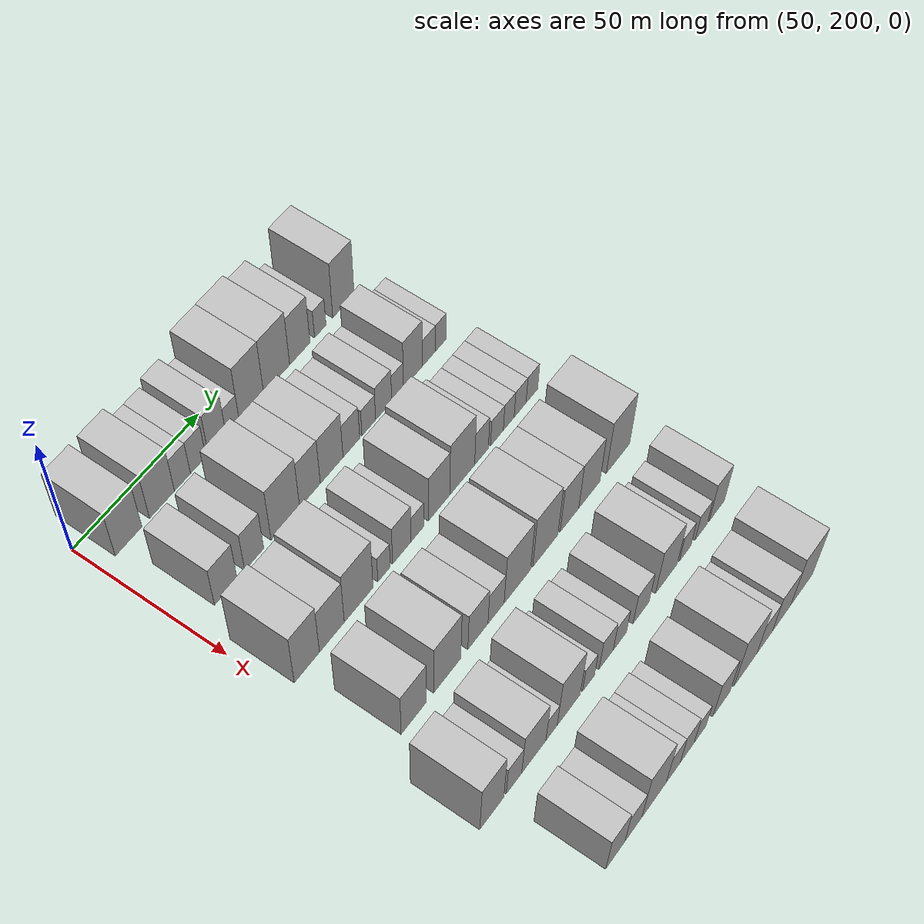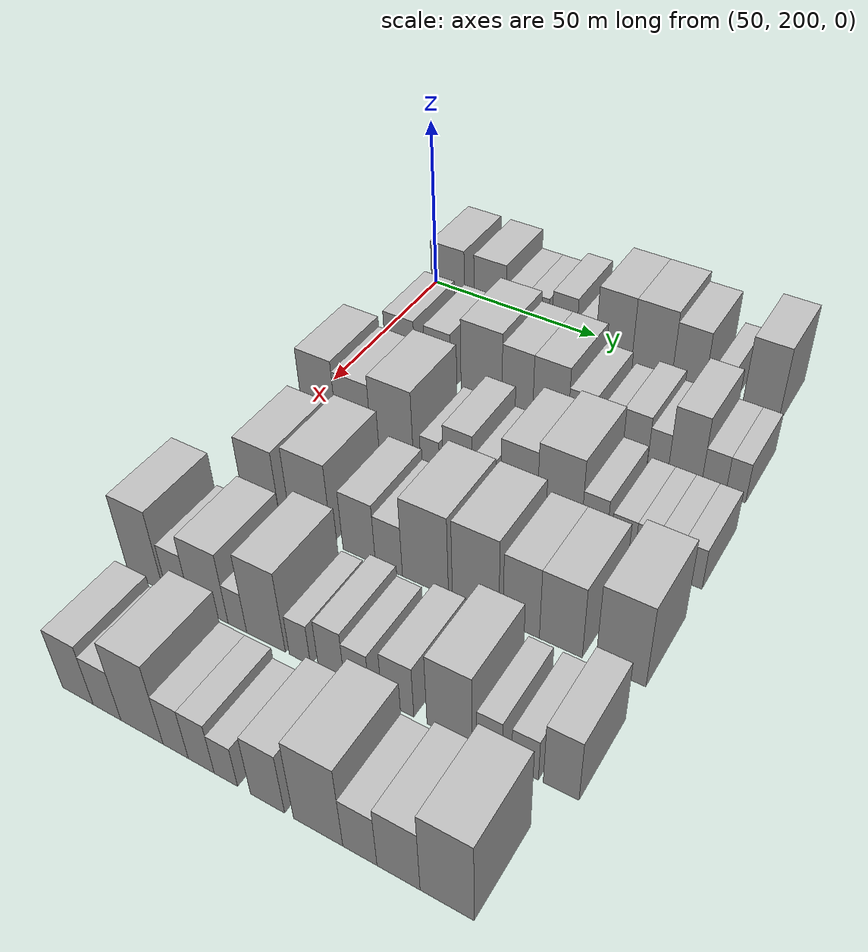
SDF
<sdf version="1.6">
 <world name="default">
  <model name="building_82">
   <static>1</static>
   <pose>50.0000 210.0472 0 0.000000 0.000000 0.000000</pose>
   <link name="link">
    <pose>0 0 10.50 0 0 0</pose>
    <collision name="collision"><geometry><box><size>20.0000 10.3637 21.0000</size></box></geometry></collision>
    <visual name="visual">
     <cast_shadows>0</cast_shadows>
     <geometry><box><size>20.0000 10.3637 21.0000</size></box></geometry>
     <material>
      <script>
       <uri>model://HANNAS_wall/materials/scripts</uri>
       <uri>model://HANNAS_wall/materials/textures</uri>
       <name>vrc/HANNAS_wall</name>
      </script>
     </material>
    </visual>
   </link>
  </model>
  <model name="building_83">
   <static>1</static>
   <pose>50.0000 223.1974 0 0.000000 0.000000 0.000000</pose>
   <link name="link">
    <pose>0 0 10.50 0 0 0</pose>
    <collision name="collision"><geometry><box><size>20.0000 9.9367 21.0000</size></box></geometry></collision>
    <visual name="visual">
     <cast_shadows>0</cast_shadows>
     <geometry><box><size>20.0000 9.9367 21.0000</size></box></geometry>
     <material>
      <script>
       <uri>model://HANNAS_wall/materials/scripts</uri>
       <uri>model://HANNAS_wall/materials/textures</uri>
       <name>vrc/HANNAS_wall</name>
      </script>
     </material>
    </visual>
   </link>
  </model>
  <model name="building_84">
   <static>1</static>
   <pose>50.0000 231.3845 0 0.000000 0.000000 0.000000</pose>
   <link name="link">
    <pose>0 0 7.50 0 0 0</pose>
    <collision name="collision"><geometry><box><size>20.0000 6.4375 15.0000</size></box></geometry></collision>
    <visual name="visual">
     <cast_shadows>0</cast_shadows>
     <geometry><box><size>20.0000 6.4375 15.0000</size></box></geometry>
     <material>
      <script>
       <uri>model://HANNAS_wall/materials/scripts</uri>
       <uri>model://HANNAS_wall/materials/textures</uri>
       <name>vrc/HANNAS_wall</name>
      </script>
     </material>
    </visual>
   </link>
  </model>
  <model name="building_85">
   <static>1</static>
   <pose>50.0000 237.7396 0 0.000000 0.000000 0.000000</pose>
   <link name="link">
    <pose>0 0 7.50 0 0 0</pose>
    <collision name="collision"><geometry><box><size>20.0000 6.2727 15.0000</size></box></geometry></collision>
    <visual name="visual">
     <cast_shadows>0</cast_shadows>
     <geometry><box><size>20.0000 6.2727 15.0000</size></box></geometry>
     <material>
      <script>
       <uri>model://HANNAS_wall/materials/scripts</uri>
       <uri>model://HANNAS_wall/materials/textures</uri>
       <name>vrc/HANNAS_wall</name>
      </script>
     </material>
    </visual>
   </link>
  </model>
  <model name="building_86">
   <static>1</static>
   <pose>50.0000 245.5218 0 0.000000 0.000000 0.000000</pose>
   <link name="link">
    <pose>0 0 9.00 0 0 0</pose>
    <collision name="collision"><geometry><box><size>20.0000 7.2917 18.0000</size></box></geometry></collision>
    <visual name="visual">
     <cast_shadows>0</cast_shadows>
     <geometry><box><size>20.0000 7.2917 18.0000</size></box></geometry>
     <material>
      <script>
       <uri>model://HANNAS_wall/materials/scripts</uri>
       <uri>model://HANNAS_wall/materials/textures</uri>
       <name>vrc/HANNAS_wall</name>
      </script>
     </material>
    </visual>
   </link>
  </model>
  <model name="building_87">
   <static>1</static>
   <pose>50.0000 251.9263 0 0.000000 0.000000 0.000000</pose>
   <link name="link">
    <pose>0 0 6.00 0 0 0</pose>
    <collision name="collision"><geometry><box><size>20.0000 5.5173 12.0000</size></box></geometry></collision>
    <visual name="visual">
     <cast_shadows>0</cast_shadows>
     <geometry><box><size>20.0000 5.5173 12.0000</size></box></geometry>
     <material>
      <script>
       <uri>model://HANNAS_wall/materials/scripts</uri>
       <uri>model://HANNAS_wall/materials/textures</uri>
       <name>vrc/HANNAS_wall</name>
      </script>
     </material>
    </visual>
   </link>
  </model>
  <model name="building_88">
   <static>1</static>
   <pose>50.0000 259.8517 0 0.000000 0.000000 0.000000</pose>
   <link name="link">
    <pose>0 0 12.00 0 0 0</pose>
    <collision name="collision"><geometry><box><size>20.0000 10.3336 24.0000</size></box></geometry></collision>
    <visual name="visual">
     <cast_shadows>0</cast_shadows>
     <geometry><box><size>20.0000 10.3336 24.0000</size></box></geometry>
     <material>
      <script>
       <uri>model://HANNAS_wall/materials/scripts</uri>
       <uri>model://HANNAS_wall/materials/textures</uri>
       <name>vrc/HANNAS_wall</name>
      </script>
     </material>
    </visual>
   </link>
  </model>
  <model name="building_89">
   <static>1</static>
   <pose>50.0000 270.6200 0 0.000000 0.000000 0.000000</pose>
   <link name="link">
    <pose>0 0 12.00 0 0 0</pose>
    <collision name="collision"><geometry><box><size>20.0000 11.2029 24.0000</size></box></geometry></collision>
    <visual name="visual">
     <cast_shadows>0</cast_shadows>
     <geometry><box><size>20.0000 11.2029 24.0000</size></box></geometry>
     <material>
      <script>
       <uri>model://HANNAS_wall/materials/scripts</uri>
       <uri>model://HANNAS_wall/materials/textures</uri>
       <name>vrc/HANNAS_wall</name>
      </script>
     </material>
    </visual>
   </link>
  </model>
  <model name="building_90">
   <static>1</static>
   <pose>50.0000 280.6599 0 0.000000 0.000000 0.000000</pose>
   <link name="link">
    <pose>0 0 10.50 0 0 0</pose>
    <collision name="collision"><geometry><box><size>20.0000 8.8768 21.0000</size></box></geometry></collision>
    <visual name="visual">
     <cast_shadows>0</cast_shadows>
     <geometry><box><size>20.0000 8.8768 21.0000</size></box></geometry>
     <material>
      <script>
       <uri>model://HANNAS_wall/materials/scripts</uri>
       <uri>model://HANNAS_wall/materials/textures</uri>
       <name>vrc/HANNAS_wall</name>
      </script>
     </material>
    </visual>
   </link>
  </model>
  <model name="building_91">
   <static>1</static>
   <pose>50.0000 289.6364 0 0.000000 0.000000 0.000000</pose>
   <link name="link">
    <pose>0 0 6.00 0 0 0</pose>
    <collision name="collision"><geometry><box><size>20.0000 5.0762 12.0000</size></box></geometry></collision>
    <visual name="visual">
     <cast_shadows>0</cast_shadows>
     <geometry><box><size>20.0000 5.0762 12.0000</size></box></geometry>
     <material>
      <script>
       <uri>model://HANNAS_wall/materials/scripts</uri>
       <uri>model://HANNAS_wall/materials/textures</uri>
       <name>vrc/HANNAS_wall</name>
      </script>
     </material>
    </visual>
   </link>
  </model>
  <model name="building_92">
   <static>1</static>
   <pose>50.0000 299.9758 0 0.000000 0.000000 0.000000</pose>
   <link name="link">
    <pose>0 0 12.00 0 0 0</pose>
    <collision name="collision"><geometry><box><size>20.0000 9.6026 24.0000</size></box></geometry></collision>
    <visual name="visual">
     <cast_shadows>0</cast_shadows>
     <geometry><box><size>20.0000 9.6026 24.0000</size></box></geometry>
     <material>
      <script>
       <uri>model://HANNAS_wall/materials/scripts</uri>
       <uri>model://HANNAS_wall/materials/textures</uri>
       <name>vrc/HANNAS_wall</name>
      </script>
     </material>
    </visual>
   </link>
  </model>
  <model name="building_194">
   <static>1</static>
   <pose>79.0000 213.2401 0 0.000000 0.000000 0.000000</pose>
   <link name="link">
    <pose>0 0 9.00 0 0 0</pose>
    <collision name="collision"><geometry><box><size>20.0000 8.9858 18.0000</size></box></geometry></collision>
    <visual name="visual">
     <cast_shadows>0</cast_shadows>
     <geometry><box><size>20.0000 8.9858 18.0000</size></box></geometry>
     <material>
      <script>
       <uri>model://HANNAS_wall/materials/scripts</uri>
       <uri>model://HANNAS_wall/materials/textures</uri>
       <name>vrc/HANNAS_wall</name>
      </script>
     </material>
    </visual>
   </link>
  </model>
  <model name="building_195">
   <static>1</static>
   <pose>79.0000 224.5824 0 0.000000 0.000000 0.000000</pose>
   <link name="link">
    <pose>0 0 9.00 0 0 0</pose>
    <collision name="collision"><geometry><box><size>20.0000 7.6987 18.0000</size></box></geometry></collision>
    <visual name="visual">
     <cast_shadows>0</cast_shadows>
     <geometry><box><size>20.0000 7.6987 18.0000</size></box></geometry>
     <material>
      <script>
       <uri>model://HANNAS_wall/materials/scripts</uri>
       <uri>model://HANNAS_wall/materials/textures</uri>
       <name>vrc/HANNAS_wall</name>
      </script>
     </material>
    </visual>
   </link>
  </model>
  <model name="building_196">
   <static>1</static>
   <pose>79.0000 237.3175 0 0.000000 0.000000 0.000000</pose>
   <link name="link">
    <pose>0 0 12.00 0 0 0</pose>
    <collision name="collision"><geometry><box><size>20.0000 11.7715 24.0000</size></box></geometry></collision>
    <visual name="visual">
     <cast_shadows>0</cast_shadows>
     <geometry><box><size>20.0000 11.7715 24.0000</size></box></geometry>
     <material>
      <script>
       <uri>model://HANNAS_wall/materials/scripts</uri>
       <uri>model://HANNAS_wall/materials/textures</uri>
       <name>vrc/HANNAS_wall</name>
      </script>
     </material>
    </visual>
   </link>
  </model>
  <model name="building_197">
   <static>1</static>
   <pose>79.0000 247.5459 0 0.000000 0.000000 0.000000</pose>
   <link name="link">
    <pose>0 0 10.50 0 0 0</pose>
    <collision name="collision"><geometry><box><size>20.0000 8.6852 21.0000</size></box></geometry></collision>
    <visual name="visual">
     <cast_shadows>0</cast_shadows>
     <geometry><box><size>20.0000 8.6852 21.0000</size></box></geometry>
     <material>
      <script>
       <uri>model://HANNAS_wall/materials/scripts</uri>
       <uri>model://HANNAS_wall/materials/textures</uri>
       <name>vrc/HANNAS_wall</name>
      </script>
     </material>
    </visual>
   </link>
  </model>
  <model name="building_198">
   <static>1</static>
   <pose>79.0000 256.7290 0 0.000000 0.000000 0.000000</pose>
   <link name="link">
    <pose>0 0 10.50 0 0 0</pose>
    <collision name="collision"><geometry><box><size>20.0000 9.6811 21.0000</size></box></geometry></collision>
    <visual name="visual">
     <cast_shadows>0</cast_shadows>
     <geometry><box><size>20.0000 9.6811 21.0000</size></box></geometry>
     <material>
      <script>
       <uri>model://HANNAS_wall/materials/scripts</uri>
       <uri>model://HANNAS_wall/materials/textures</uri>
       <name>vrc/HANNAS_wall</name>
      </script>
     </material>
    </visual>
   </link>
  </model>
  <model name="building_199">
   <static>1</static>
   <pose>79.0000 265.1500 0 0.000000 0.000000 0.000000</pose>
   <link name="link">
    <pose>0 0 7.50 0 0 0</pose>
    <collision name="collision"><geometry><box><size>20.0000 7.1609 15.0000</size></box></geometry></collision>
    <visual name="visual">
     <cast_shadows>0</cast_shadows>
     <geometry><box><size>20.0000 7.1609 15.0000</size></box></geometry>
     <material>
      <script>
       <uri>model://HANNAS_wall/materials/scripts</uri>
       <uri>model://HANNAS_wall/materials/textures</uri>
       <name>vrc/HANNAS_wall</name>
      </script>
     </material>
    </visual>
   </link>
  </model>
  <model name="building_200">
   <static>1</static>
   <pose>79.0000 272.7201 0 0.000000 0.000000 0.000000</pose>
   <link name="link">
    <pose>0 0 6.00 0 0 0</pose>
    <collision name="collision"><geometry><box><size>20.0000 5.9795 12.0000</size></box></geometry></collision>
    <visual name="visual">
     <cast_shadows>0</cast_shadows>
     <geometry><box><size>20.0000 5.9795 12.0000</size></box></geometry>
     <material>
      <script>
       <uri>model://HANNAS_wall/materials/scripts</uri>
       <uri>model://HANNAS_wall/materials/textures</uri>
       <name>vrc/HANNAS_wall</name>
      </script>
     </material>
    </visual>
   </link>
  </model>
  <model name="building_201">
   <static>1</static>
   <pose>79.0000 279.2532 0 0.000000 0.000000 0.000000</pose>
   <link name="link">
    <pose>0 0 7.50 0 0 0</pose>
    <collision name="collision"><geometry><box><size>20.0000 7.0867 15.0000</size></box></geometry></collision>
    <visual name="visual">
     <cast_shadows>0</cast_shadows>
     <geometry><box><size>20.0000 7.0867 15.0000</size></box></geometry>
     <material>
      <script>
       <uri>model://HANNAS_wall/materials/scripts</uri>
       <uri>model://HANNAS_wall/materials/textures</uri>
       <name>vrc/HANNAS_wall</name>
      </script>
     </material>
    </visual>
   </link>
  </model>
  <model name="building_202">
   <static>1</static>
   <pose>79.0000 285.4374 0 0.000000 0.000000 0.000000</pose>
   <link name="link">
    <pose>0 0 6.00 0 0 0</pose>
    <collision name="collision"><geometry><box><size>20.0000 5.2817 12.0000</size></box></geometry></collision>
    <visual name="visual">
     <cast_shadows>0</cast_shadows>
     <geometry><box><size>20.0000 5.2817 12.0000</size></box></geometry>
     <material>
      <script>
       <uri>model://HANNAS_wall/materials/scripts</uri>
       <uri>model://HANNAS_wall/materials/textures</uri>
       <name>vrc/HANNAS_wall</name>
      </script>
     </material>
    </visual>
   </link>
  </model>
  <model name="building_203">
   <static>1</static>
   <pose>79.0000 292.3000 0 0.000000 0.000000 0.000000</pose>
   <link name="link">
    <pose>0 0 10.50 0 0 0</pose>
    <collision name="collision"><geometry><box><size>20.0000 8.4433 21.0000</size></box></geometry></collision>
    <visual name="visual">
     <cast_shadows>0</cast_shadows>
     <geometry><box><size>20.0000 8.4433 21.0000</size></box></geometry>
     <material>
      <script>
       <uri>model://HANNAS_wall/materials/scripts</uri>
       <uri>model://HANNAS_wall/materials/textures</uri>
       <name>vrc/HANNAS_wall</name>
      </script>
     </material>
    </visual>
   </link>
  </model>
  <model name="building_204">
   <static>1</static>
   <pose>79.0000 299.5188 0 0.000000 0.000000 0.000000</pose>
   <link name="link">
    <pose>0 0 6.00 0 0 0</pose>
    <collision name="collision"><geometry><box><size>20.0000 5.9944 12.0000</size></box></geometry></collision>
    <visual name="visual">
     <cast_shadows>0</cast_shadows>
     <geometry><box><size>20.0000 5.9944 12.0000</size></box></geometry>
     <material>
      <script>
       <uri>model://HANNAS_wall/materials/scripts</uri>
       <uri>model://HANNAS_wall/materials/textures</uri>
       <name>vrc/HANNAS_wall</name>
      </script>
     </material>
    </visual>
   </link>
  </model>
  <model name="building_205">
   <static>1</static>
   <pose>79.0000 304.9656 0 0.000000 0.000000 0.000000</pose>
   <link name="link">
    <pose>0 0 6.00 0 0 0</pose>
    <collision name="collision"><geometry><box><size>20.0000 4.8991 12.0000</size></box></geometry></collision>
    <visual name="visual">
     <cast_shadows>0</cast_shadows>
     <geometry><box><size>20.0000 4.8991 12.0000</size></box></geometry>
     <material>
      <script>
       <uri>model://HANNAS_wall/materials/scripts</uri>
       <uri>model://HANNAS_wall/materials/textures</uri>
       <name>vrc/HANNAS_wall</name>
      </script>
     </material>
    </visual>
   </link>
  </model>
  <model name="building_311">
   <static>1</static>
   <pose>108.0000 208.7507 0 0.000000 0.000000 0.000000</pose>
   <link name="link">
    <pose>0 0 12.00 0 0 0</pose>
    <collision name="collision"><geometry><box><size>20.0000 10.0615 24.0000</size></box></geometry></collision>
    <visual name="visual">
     <cast_shadows>0</cast_shadows>
     <geometry><box><size>20.0000 10.0615 24.0000</size></box></geometry>
     <material>
      <script>
       <uri>model://HANNAS_wall/materials/scripts</uri>
       <uri>model://HANNAS_wall/materials/textures</uri>
       <name>vrc/HANNAS_wall</name>
      </script>
     </material>
    </visual>
   </link>
  </model>
  <model name="building_312">
   <static>1</static>
   <pose>108.0000 218.8060 0 0.000000 0.000000 0.000000</pose>
   <link name="link">
    <pose>0 0 10.50 0 0 0</pose>
    <collision name="collision"><geometry><box><size>20.0000 10.0490 21.0000</size></box></geometry></collision>
    <visual name="visual">
     <cast_shadows>0</cast_shadows>
     <geometry><box><size>20.0000 10.0490 21.0000</size></box></geometry>
     <material>
      <script>
       <uri>model://HANNAS_wall/materials/scripts</uri>
       <uri>model://HANNAS_wall/materials/textures</uri>
       <name>vrc/HANNAS_wall</name>
      </script>
     </material>
    </visual>
   </link>
  </model>
  <model name="building_313">
   <static>1</static>
   <pose>108.0000 229.7748 0 0.000000 0.000000 0.000000</pose>
   <link name="link">
    <pose>0 0 12.00 0 0 0</pose>
    <collision name="collision"><geometry><box><size>20.0000 11.8885 24.0000</size></box></geometry></collision>
    <visual name="visual">
     <cast_shadows>0</cast_shadows>
     <geometry><box><size>20.0000 11.8885 24.0000</size></box></geometry>
     <material>
      <script>
       <uri>model://HANNAS_wall/materials/scripts</uri>
       <uri>model://HANNAS_wall/materials/textures</uri>
       <name>vrc/HANNAS_wall</name>
      </script>
     </material>
    </visual>
   </link>
  </model>
  <model name="building_314">
   <static>1</static>
   <pose>108.0000 240.3170 0 0.000000 0.000000 0.000000</pose>
   <link name="link">
    <pose>0 0 6.00 0 0 0</pose>
    <collision name="collision"><geometry><box><size>20.0000 5.1960 12.0000</size></box></geometry></collision>
    <visual name="visual">
     <cast_shadows>0</cast_shadows>
     <geometry><box><size>20.0000 5.1960 12.0000</size></box></geometry>
     <material>
      <script>
       <uri>model://HANNAS_wall/materials/scripts</uri>
       <uri>model://HANNAS_wall/materials/textures</uri>
       <name>vrc/HANNAS_wall</name>
      </script>
     </material>
    </visual>
   </link>
  </model>
  <model name="building_315">
   <static>1</static>
   <pose>108.0000 247.8476 0 0.000000 0.000000 0.000000</pose>
   <link name="link">
    <pose>0 0 9.00 0 0 0</pose>
    <collision name="collision"><geometry><box><size>20.0000 7.8652 18.0000</size></box></geometry></collision>
    <visual name="visual">
     <cast_shadows>0</cast_shadows>
     <geometry><box><size>20.0000 7.8652 18.0000</size></box></geometry>
     <material>
      <script>
       <uri>model://HANNAS_wall/materials/scripts</uri>
       <uri>model://HANNAS_wall/materials/textures</uri>
       <name>vrc/HANNAS_wall</name>
      </script>
     </material>
    </visual>
   </link>
  </model>
  <model name="building_316">
   <static>1</static>
   <pose>108.0000 254.5109 0 0.000000 0.000000 0.000000</pose>
   <link name="link">
    <pose>0 0 6.00 0 0 0</pose>
    <collision name="collision"><geometry><box><size>20.0000 5.4615 12.0000</size></box></geometry></collision>
    <visual name="visual">
     <cast_shadows>0</cast_shadows>
     <geometry><box><size>20.0000 5.4615 12.0000</size></box></geometry>
     <material>
      <script>
       <uri>model://HANNAS_wall/materials/scripts</uri>
       <uri>model://HANNAS_wall/materials/textures</uri>
       <name>vrc/HANNAS_wall</name>
      </script>
     </material>
    </visual>
   </link>
  </model>
  <model name="building_317">
   <static>1</static>
   <pose>108.0000 263.9057 0 0.000000 0.000000 0.000000</pose>
   <link name="link">
    <pose>0 0 10.50 0 0 0</pose>
    <collision name="collision"><geometry><box><size>20.0000 9.3279 21.0000</size></box></geometry></collision>
    <visual name="visual">
     <cast_shadows>0</cast_shadows>
     <geometry><box><size>20.0000 9.3279 21.0000</size></box></geometry>
     <material>
      <script>
       <uri>model://HANNAS_wall/materials/scripts</uri>
       <uri>model://HANNAS_wall/materials/textures</uri>
       <name>vrc/HANNAS_wall</name>
      </script>
     </material>
    </visual>
   </link>
  </model>
  <model name="building_318">
   <static>1</static>
   <pose>108.0000 274.1234 0 0.000000 0.000000 0.000000</pose>
   <link name="link">
    <pose>0 0 12.00 0 0 0</pose>
    <collision name="collision"><geometry><box><size>20.0000 11.1075 24.0000</size></box></geometry></collision>
    <visual name="visual">
     <cast_shadows>0</cast_shadows>
     <geometry><box><size>20.0000 11.1075 24.0000</size></box></geometry>
     <material>
      <script>
       <uri>model://HANNAS_wall/materials/scripts</uri>
       <uri>model://HANNAS_wall/materials/textures</uri>
       <name>vrc/HANNAS_wall</name>
      </script>
     </material>
    </visual>
   </link>
  </model>
  <model name="building_319">
   <static>1</static>
   <pose>108.0000 282.7720 0 0.000000 0.000000 0.000000</pose>
   <link name="link">
    <pose>0 0 7.50 0 0 0</pose>
    <collision name="collision"><geometry><box><size>20.0000 6.1898 15.0000</size></box></geometry></collision>
    <visual name="visual">
     <cast_shadows>0</cast_shadows>
     <geometry><box><size>20.0000 6.1898 15.0000</size></box></geometry>
     <material>
      <script>
       <uri>model://HANNAS_wall/materials/scripts</uri>
       <uri>model://HANNAS_wall/materials/textures</uri>
       <name>vrc/HANNAS_wall</name>
      </script>
     </material>
    </visual>
   </link>
  </model>
  <model name="building_320">
   <static>1</static>
   <pose>108.0000 289.7789 0 0.000000 0.000000 0.000000</pose>
   <link name="link">
    <pose>0 0 6.00 0 0 0</pose>
    <collision name="collision"><geometry><box><size>20.0000 5.8240 12.0000</size></box></geometry></collision>
    <visual name="visual">
     <cast_shadows>0</cast_shadows>
     <geometry><box><size>20.0000 5.8240 12.0000</size></box></geometry>
     <material>
      <script>
       <uri>model://HANNAS_wall/materials/scripts</uri>
       <uri>model://HANNAS_wall/materials/textures</uri>
       <name>vrc/HANNAS_wall</name>
      </script>
     </material>
    </visual>
   </link>
  </model>
  <model name="building_321">
   <static>1</static>
   <pose>108.0000 295.1853 0 0.000000 0.000000 0.000000</pose>
   <link name="link">
    <pose>0 0 6.00 0 0 0</pose>
    <collision name="collision"><geometry><box><size>20.0000 4.9889 12.0000</size></box></geometry></collision>
    <visual name="visual">
     <cast_shadows>0</cast_shadows>
     <geometry><box><size>20.0000 4.9889 12.0000</size></box></geometry>
     <material>
      <script>
       <uri>model://HANNAS_wall/materials/scripts</uri>
       <uri>model://HANNAS_wall/materials/textures</uri>
       <name>vrc/HANNAS_wall</name>
      </script>
     </material>
    </visual>
   </link>
  </model>
  <model name="building_322">
   <static>1</static>
   <pose>108.0000 300.4399 0 0.000000 0.000000 0.000000</pose>
   <link name="link">
    <pose>0 0 6.00 0 0 0</pose>
    <collision name="collision"><geometry><box><size>20.0000 5.5202 12.0000</size></box></geometry></collision>
    <visual name="visual">
     <cast_shadows>0</cast_shadows>
     <geometry><box><size>20.0000 5.5202 12.0000</size></box></geometry>
     <material>
      <script>
       <uri>model://HANNAS_wall/materials/scripts</uri>
       <uri>model://HANNAS_wall/materials/textures</uri>
       <name>vrc/HANNAS_wall</name>
      </script>
     </material>
    </visual>
   </link>
  </model>
  <model name="building_323">
   <static>1</static>
   <pose>108.0000 305.9110 0 0.000000 0.000000 0.000000</pose>
   <link name="link">
    <pose>0 0 6.00 0 0 0</pose>
    <collision name="collision"><geometry><box><size>20.0000 5.4220 12.0000</size></box></geometry></collision>
    <visual name="visual">
     <cast_shadows>0</cast_shadows>
     <geometry><box><size>20.0000 5.4220 12.0000</size></box></geometry>
     <material>
      <script>
       <uri>model://HANNAS_wall/materials/scripts</uri>
       <uri>model://HANNAS_wall/materials/textures</uri>
       <name>vrc/HANNAS_wall</name>
      </script>
     </material>
    </visual>
   </link>
  </model>
  <model name="building_427">
   <static>1</static>
   <pose>137.0000 213.2112 0 0.000000 0.000000 0.000000</pose>
   <link name="link">
    <pose>0 0 10.50 0 0 0</pose>
    <collision name="collision"><geometry><box><size>20.0000 10.2937 21.0000</size></box></geometry></collision>
    <visual name="visual">
     <cast_shadows>0</cast_shadows>
     <geometry><box><size>20.0000 10.2937 21.0000</size></box></geometry>
     <material>
      <script>
       <uri>model://HANNAS_wall/materials/scripts</uri>
       <uri>model://HANNAS_wall/materials/textures</uri>
       <name>vrc/HANNAS_wall</name>
      </script>
     </material>
    </visual>
   </link>
  </model>
  <model name="building_428">
   <static>1</static>
   <pose>137.0000 227.0130 0 0.000000 0.000000 0.000000</pose>
   <link name="link">
    <pose>0 0 12.00 0 0 0</pose>
    <collision name="collision"><geometry><box><size>20.0000 11.3098 24.0000</size></box></geometry></collision>
    <visual name="visual">
     <cast_shadows>0</cast_shadows>
     <geometry><box><size>20.0000 11.3098 24.0000</size></box></geometry>
     <material>
      <script>
       <uri>model://HANNAS_wall/materials/scripts</uri>
       <uri>model://HANNAS_wall/materials/textures</uri>
       <name>vrc/HANNAS_wall</name>
      </script>
     </material>
    </visual>
   </link>
  </model>
  <model name="building_429">
   <static>1</static>
   <pose>137.0000 239.9607 0 0.000000 0.000000 0.000000</pose>
   <link name="link">
    <pose>0 0 9.00 0 0 0</pose>
    <collision name="collision"><geometry><box><size>20.0000 8.5855 18.0000</size></box></geometry></collision>
    <visual name="visual">
     <cast_shadows>0</cast_shadows>
     <geometry><box><size>20.0000 8.5855 18.0000</size></box></geometry>
     <material>
      <script>
       <uri>model://HANNAS_wall/materials/scripts</uri>
       <uri>model://HANNAS_wall/materials/textures</uri>
       <name>vrc/HANNAS_wall</name>
      </script>
     </material>
    </visual>
   </link>
  </model>
  <model name="building_430">
   <static>1</static>
   <pose>137.0000 247.7555 0 0.000000 0.000000 0.000000</pose>
   <link name="link">
    <pose>0 0 7.50 0 0 0</pose>
    <collision name="collision"><geometry><box><size>20.0000 7.0041 15.0000</size></box></geometry></collision>
    <visual name="visual">
     <cast_shadows>0</cast_shadows>
     <geometry><box><size>20.0000 7.0041 15.0000</size></box></geometry>
     <material>
      <script>
       <uri>model://HANNAS_wall/materials/scripts</uri>
       <uri>model://HANNAS_wall/materials/textures</uri>
       <name>vrc/HANNAS_wall</name>
      </script>
     </material>
    </visual>
   </link>
  </model>
  <model name="building_431">
   <static>1</static>
   <pose>137.0000 257.0670 0 0.000000 0.000000 0.000000</pose>
   <link name="link">
    <pose>0 0 12.00 0 0 0</pose>
    <collision name="collision"><geometry><box><size>20.0000 11.6190 24.0000</size></box></geometry></collision>
    <visual name="visual">
     <cast_shadows>0</cast_shadows>
     <geometry><box><size>20.0000 11.6190 24.0000</size></box></geometry>
     <material>
      <script>
       <uri>model://HANNAS_wall/materials/scripts</uri>
       <uri>model://HANNAS_wall/materials/textures</uri>
       <name>vrc/HANNAS_wall</name>
      </script>
     </material>
    </visual>
   </link>
  </model>
  <model name="building_432">
   <static>1</static>
   <pose>137.0000 269.5162 0 0.000000 0.000000 0.000000</pose>
   <link name="link">
    <pose>0 0 12.00 0 0 0</pose>
    <collision name="collision"><geometry><box><size>20.0000 11.2794 24.0000</size></box></geometry></collision>
    <visual name="visual">
     <cast_shadows>0</cast_shadows>
     <geometry><box><size>20.0000 11.2794 24.0000</size></box></geometry>
     <material>
      <script>
       <uri>model://HANNAS_wall/materials/scripts</uri>
       <uri>model://HANNAS_wall/materials/textures</uri>
       <name>vrc/HANNAS_wall</name>
      </script>
     </material>
    </visual>
   </link>
  </model>
  <model name="building_433">
   <static>1</static>
   <pose>137.0000 280.4302 0 0.000000 0.000000 0.000000</pose>
   <link name="link">
    <pose>0 0 10.50 0 0 0</pose>
    <collision name="collision"><geometry><box><size>20.0000 8.5487 21.0000</size></box></geometry></collision>
    <visual name="visual">
     <cast_shadows>0</cast_shadows>
     <geometry><box><size>20.0000 8.5487 21.0000</size></box></geometry>
     <material>
      <script>
       <uri>model://HANNAS_wall/materials/scripts</uri>
       <uri>model://HANNAS_wall/materials/textures</uri>
       <name>vrc/HANNAS_wall</name>
      </script>
     </material>
    </visual>
   </link>
  </model>
  <model name="building_434">
   <static>1</static>
   <pose>137.0000 289.6210 0 0.000000 0.000000 0.000000</pose>
   <link name="link">
    <pose>0 0 10.50 0 0 0</pose>
    <collision name="collision"><geometry><box><size>20.0000 9.8329 21.0000</size></box></geometry></collision>
    <visual name="visual">
     <cast_shadows>0</cast_shadows>
     <geometry><box><size>20.0000 9.8329 21.0000</size></box></geometry>
     <material>
      <script>
       <uri>model://HANNAS_wall/materials/scripts</uri>
       <uri>model://HANNAS_wall/materials/textures</uri>
       <name>vrc/HANNAS_wall</name>
      </script>
     </material>
    </visual>
   </link>
  </model>
  <model name="building_435">
   <static>1</static>
   <pose>137.0000 303.0755 0 0.000000 0.000000 0.000000</pose>
   <link name="link">
    <pose>0 0 12.00 0 0 0</pose>
    <collision name="collision"><geometry><box><size>20.0000 11.0763 24.0000</size></box></geometry></collision>
    <visual name="visual">
     <cast_shadows>0</cast_shadows>
     <geometry><box><size>20.0000 11.0763 24.0000</size></box></geometry>
     <material>
      <script>
       <uri>model://HANNAS_wall/materials/scripts</uri>
       <uri>model://HANNAS_wall/materials/textures</uri>
       <name>vrc/HANNAS_wall</name>
      </script>
     </material>
    </visual>
   </link>
  </model>
  <model name="building_538">
   <static>1</static>
   <pose>166.0000 204.4209 0 0.000000 0.000000 0.000000</pose>
   <link name="link">
    <pose>0 0 12.00 0 0 0</pose>
    <collision name="collision"><geometry><box><size>20.0000 9.8152 24.0000</size></box></geometry></collision>
    <visual name="visual">
     <cast_shadows>0</cast_shadows>
     <geometry><box><size>20.0000 9.8152 24.0000</size></box></geometry>
     <material>
      <script>
       <uri>model://HANNAS_wall/materials/scripts</uri>
       <uri>model://HANNAS_wall/materials/textures</uri>
       <name>vrc/HANNAS_wall</name>
      </script>
     </material>
    </visual>
   </link>
  </model>
  <model name="building_539">
   <static>1</static>
   <pose>166.0000 213.5343 0 0.000000 0.000000 0.000000</pose>
   <link name="link">
    <pose>0 0 7.50 0 0 0</pose>
    <collision name="collision"><geometry><box><size>20.0000 6.4117 15.0000</size></box></geometry></collision>
    <visual name="visual">
     <cast_shadows>0</cast_shadows>
     <geometry><box><size>20.0000 6.4117 15.0000</size></box></geometry>
     <material>
      <script>
       <uri>model://HANNAS_wall/materials/scripts</uri>
       <uri>model://HANNAS_wall/materials/textures</uri>
       <name>vrc/HANNAS_wall</name>
      </script>
     </material>
    </visual>
   </link>
  </model>
  <model name="building_540">
   <static>1</static>
   <pose>166.0000 221.8184 0 0.000000 0.000000 0.000000</pose>
   <link name="link">
    <pose>0 0 10.50 0 0 0</pose>
    <collision name="collision"><geometry><box><size>20.0000 10.1565 21.0000</size></box></geometry></collision>
    <visual name="visual">
     <cast_shadows>0</cast_shadows>
     <geometry><box><size>20.0000 10.1565 21.0000</size></box></geometry>
     <material>
      <script>
       <uri>model://HANNAS_wall/materials/scripts</uri>
       <uri>model://HANNAS_wall/materials/textures</uri>
       <name>vrc/HANNAS_wall</name>
      </script>
     </material>
    </visual>
   </link>
  </model>
  <model name="building_541">
   <static>1</static>
   <pose>166.0000 229.3312 0 0.000000 0.000000 0.000000</pose>
   <link name="link">
    <pose>0 0 6.00 0 0 0</pose>
    <collision name="collision"><geometry><box><size>20.0000 4.8690 12.0000</size></box></geometry></collision>
    <visual name="visual">
     <cast_shadows>0</cast_shadows>
     <geometry><box><size>20.0000 4.8690 12.0000</size></box></geometry>
     <material>
      <script>
       <uri>model://HANNAS_wall/materials/scripts</uri>
       <uri>model://HANNAS_wall/materials/textures</uri>
       <name>vrc/HANNAS_wall</name>
      </script>
     </material>
    </visual>
   </link>
  </model>
  <model name="building_542">
   <static>1</static>
   <pose>166.0000 236.7332 0 0.000000 0.000000 0.000000</pose>
   <link name="link">
    <pose>0 0 12.00 0 0 0</pose>
    <collision name="collision"><geometry><box><size>20.0000 9.9352 24.0000</size></box></geometry></collision>
    <visual name="visual">
     <cast_shadows>0</cast_shadows>
     <geometry><box><size>20.0000 9.9352 24.0000</size></box></geometry>
     <material>
      <script>
       <uri>model://HANNAS_wall/materials/scripts</uri>
       <uri>model://HANNAS_wall/materials/textures</uri>
       <name>vrc/HANNAS_wall</name>
      </script>
     </material>
    </visual>
   </link>
  </model>
  <model name="building_543">
   <static>1</static>
   <pose>166.0000 245.3482 0 0.000000 0.000000 0.000000</pose>
   <link name="link">
    <pose>0 0 6.00 0 0 0</pose>
    <collision name="collision"><geometry><box><size>20.0000 5.2948 12.0000</size></box></geometry></collision>
    <visual name="visual">
     <cast_shadows>0</cast_shadows>
     <geometry><box><size>20.0000 5.2948 12.0000</size></box></geometry>
     <material>
      <script>
       <uri>model://HANNAS_wall/materials/scripts</uri>
       <uri>model://HANNAS_wall/materials/textures</uri>
       <name>vrc/HANNAS_wall</name>
      </script>
     </material>
    </visual>
   </link>
  </model>
  <model name="building_544">
   <static>1</static>
   <pose>166.0000 253.1540 0 0.000000 0.000000 0.000000</pose>
   <link name="link">
    <pose>0 0 7.50 0 0 0</pose>
    <collision name="collision"><geometry><box><size>20.0000 6.3167 15.0000</size></box></geometry></collision>
    <visual name="visual">
     <cast_shadows>0</cast_shadows>
     <geometry><box><size>20.0000 6.3167 15.0000</size></box></geometry>
     <material>
      <script>
       <uri>model://HANNAS_wall/materials/scripts</uri>
       <uri>model://HANNAS_wall/materials/textures</uri>
       <name>vrc/HANNAS_wall</name>
      </script>
     </material>
    </visual>
   </link>
  </model>
  <model name="building_545">
   <static>1</static>
   <pose>166.0000 259.2878 0 0.000000 0.000000 0.000000</pose>
   <link name="link">
    <pose>0 0 6.00 0 0 0</pose>
    <collision name="collision"><geometry><box><size>20.0000 5.9509 12.0000</size></box></geometry></collision>
    <visual name="visual">
     <cast_shadows>0</cast_shadows>
     <geometry><box><size>20.0000 5.9509 12.0000</size></box></geometry>
     <material>
      <script>
       <uri>model://HANNAS_wall/materials/scripts</uri>
       <uri>model://HANNAS_wall/materials/textures</uri>
       <name>vrc/HANNAS_wall</name>
      </script>
     </material>
    </visual>
   </link>
  </model>
  <model name="building_546">
   <static>1</static>
   <pose>166.0000 268.9507 0 0.000000 0.000000 0.000000</pose>
   <link name="link">
    <pose>0 0 7.50 0 0 0</pose>
    <collision name="collision"><geometry><box><size>20.0000 7.3748 15.0000</size></box></geometry></collision>
    <visual name="visual">
     <cast_shadows>0</cast_shadows>
     <geometry><box><size>20.0000 7.3748 15.0000</size></box></geometry>
     <material>
      <script>
       <uri>model://HANNAS_wall/materials/scripts</uri>
       <uri>model://HANNAS_wall/materials/textures</uri>
       <name>vrc/HANNAS_wall</name>
      </script>
     </material>
    </visual>
   </link>
  </model>
  <model name="building_547">
   <static>1</static>
   <pose>166.0000 280.6917 0 0.000000 0.000000 0.000000</pose>
   <link name="link">
    <pose>0 0 10.50 0 0 0</pose>
    <collision name="collision"><geometry><box><size>20.0000 10.1071 21.0000</size></box></geometry></collision>
    <visual name="visual">
     <cast_shadows>0</cast_shadows>
     <geometry><box><size>20.0000 10.1071 21.0000</size></box></geometry>
     <material>
      <script>
       <uri>model://HANNAS_wall/materials/scripts</uri>
       <uri>model://HANNAS_wall/materials/textures</uri>
       <name>vrc/HANNAS_wall</name>
      </script>
     </material>
    </visual>
   </link>
  </model>
  <model name="building_548">
   <static>1</static>
   <pose>166.0000 289.4948 0 0.000000 0.000000 0.000000</pose>
   <link name="link">
    <pose>0 0 6.00 0 0 0</pose>
    <collision name="collision"><geometry><box><size>20.0000 5.4991 12.0000</size></box></geometry></collision>
    <visual name="visual">
     <cast_shadows>0</cast_shadows>
     <geometry><box><size>20.0000 5.4991 12.0000</size></box></geometry>
     <material>
      <script>
       <uri>model://HANNAS_wall/materials/scripts</uri>
       <uri>model://HANNAS_wall/materials/textures</uri>
       <name>vrc/HANNAS_wall</name>
      </script>
     </material>
    </visual>
   </link>
  </model>
  <model name="building_549">
   <static>1</static>
   <pose>166.0000 297.1027 0 0.000000 0.000000 0.000000</pose>
   <link name="link">
    <pose>0 0 6.00 0 0 0</pose>
    <collision name="collision"><geometry><box><size>20.0000 5.7167 12.0000</size></box></geometry></collision>
    <visual name="visual">
     <cast_shadows>0</cast_shadows>
     <geometry><box><size>20.0000 5.7167 12.0000</size></box></geometry>
     <material>
      <script>
       <uri>model://HANNAS_wall/materials/scripts</uri>
       <uri>model://HANNAS_wall/materials/textures</uri>
       <name>vrc/HANNAS_wall</name>
      </script>
     </material>
    </visual>
   </link>
  </model>
  <model name="building_550">
   <static>1</static>
   <pose>166.0000 304.6580 0 0.000000 0.000000 0.000000</pose>
   <link name="link">
    <pose>0 0 9.00 0 0 0</pose>
    <collision name="collision"><geometry><box><size>20.0000 7.3939 18.0000</size></box></geometry></collision>
    <visual name="visual">
     <cast_shadows>0</cast_shadows>
     <geometry><box><size>20.0000 7.3939 18.0000</size></box></geometry>
     <material>
      <script>
       <uri>model://HANNAS_wall/materials/scripts</uri>
       <uri>model://HANNAS_wall/materials/textures</uri>
       <name>vrc/HANNAS_wall</name>
      </script>
     </material>
    </visual>
   </link>
  </model>
  <model name="building_654">
   <static>1</static>
   <pose>195.0000 212.7813 0 0.000000 0.000000 0.000000</pose>
   <link name="link">
    <pose>0 0 9.00 0 0 0</pose>
    <collision name="collision"><geometry><box><size>20.0000 8.1265 18.0000</size></box></geometry></collision>
    <visual name="visual">
     <cast_shadows>0</cast_shadows>
     <geometry><box><size>20.0000 8.1265 18.0000</size></box></geometry>
     <material>
      <script>
       <uri>model://HANNAS_wall/materials/scripts</uri>
       <uri>model://HANNAS_wall/materials/textures</uri>
       <name>vrc/HANNAS_wall</name>
      </script>
     </material>
    </visual>
   </link>
  </model>
  <model name="building_655">
   <static>1</static>
   <pose>195.0000 220.4550 0 0.000000 0.000000 0.000000</pose>
   <link name="link">
    <pose>0 0 7.50 0 0 0</pose>
    <collision name="collision"><geometry><box><size>20.0000 7.2211 15.0000</size></box></geometry></collision>
    <visual name="visual">
     <cast_shadows>0</cast_shadows>
     <geometry><box><size>20.0000 7.2211 15.0000</size></box></geometry>
     <material>
      <script>
       <uri>model://HANNAS_wall/materials/scripts</uri>
       <uri>model://HANNAS_wall/materials/textures</uri>
       <name>vrc/HANNAS_wall</name>
      </script>
     </material>
    </visual>
   </link>
  </model>
  <model name="building_656">
   <static>1</static>
   <pose>195.0000 229.3707 0 0.000000 0.000000 0.000000</pose>
   <link name="link">
    <pose>0 0 12.00 0 0 0</pose>
    <collision name="collision"><geometry><box><size>20.0000 10.6103 24.0000</size></box></geometry></collision>
    <visual name="visual">
     <cast_shadows>0</cast_shadows>
     <geometry><box><size>20.0000 10.6103 24.0000</size></box></geometry>
     <material>
      <script>
       <uri>model://HANNAS_wall/materials/scripts</uri>
       <uri>model://HANNAS_wall/materials/textures</uri>
       <name>vrc/HANNAS_wall</name>
      </script>
     </material>
    </visual>
   </link>
  </model>
  <model name="building_657">
   <static>1</static>
   <pose>195.0000 237.7747 0 0.000000 0.000000 0.000000</pose>
   <link name="link">
    <pose>0 0 7.50 0 0 0</pose>
    <collision name="collision"><geometry><box><size>20.0000 6.1976 15.0000</size></box></geometry></collision>
    <visual name="visual">
     <cast_shadows>0</cast_shadows>
     <geometry><box><size>20.0000 6.1976 15.0000</size></box></geometry>
     <material>
      <script>
       <uri>model://HANNAS_wall/materials/scripts</uri>
       <uri>model://HANNAS_wall/materials/textures</uri>
       <name>vrc/HANNAS_wall</name>
      </script>
     </material>
    </visual>
   </link>
  </model>
  <model name="building_658">
   <static>1</static>
   <pose>195.0000 243.9915 0 0.000000 0.000000 0.000000</pose>
   <link name="link">
    <pose>0 0 7.50 0 0 0</pose>
    <collision name="collision"><geometry><box><size>20.0000 6.2361 15.0000</size></box></geometry></collision>
    <visual name="visual">
     <cast_shadows>0</cast_shadows>
     <geometry><box><size>20.0000 6.2361 15.0000</size></box></geometry>
     <material>
      <script>
       <uri>model://HANNAS_wall/materials/scripts</uri>
       <uri>model://HANNAS_wall/materials/textures</uri>
       <name>vrc/HANNAS_wall</name>
      </script>
     </material>
    </visual>
   </link>
  </model>
  <model name="building_659">
   <static>1</static>
   <pose>195.0000 249.8564 0 0.000000 0.000000 0.000000</pose>
   <link name="link">
    <pose>0 0 6.00 0 0 0</pose>
    <collision name="collision"><geometry><box><size>20.0000 5.4937 12.0000</size></box></geometry></collision>
    <visual name="visual">
     <cast_shadows>0</cast_shadows>
     <geometry><box><size>20.0000 5.4937 12.0000</size></box></geometry>
     <material>
      <script>
       <uri>model://HANNAS_wall/materials/scripts</uri>
       <uri>model://HANNAS_wall/materials/textures</uri>
       <name>vrc/HANNAS_wall</name>
      </script>
     </material>
    </visual>
   </link>
  </model>
  <model name="building_660">
   <static>1</static>
   <pose>195.0000 259.4990 0 0.000000 0.000000 0.000000</pose>
   <link name="link">
    <pose>0 0 9.00 0 0 0</pose>
    <collision name="collision"><geometry><box><size>20.0000 7.7915 18.0000</size></box></geometry></collision>
    <visual name="visual">
     <cast_shadows>0</cast_shadows>
     <geometry><box><size>20.0000 7.7915 18.0000</size></box></geometry>
     <material>
      <script>
       <uri>model://HANNAS_wall/materials/scripts</uri>
       <uri>model://HANNAS_wall/materials/textures</uri>
       <name>vrc/HANNAS_wall</name>
      </script>
     </material>
    </visual>
   </link>
  </model>
  <model name="building_661">
   <static>1</static>
   <pose>195.0000 270.8036 0 0.000000 0.000000 0.000000</pose>
   <link name="link">
    <pose>0 0 12.00 0 0 0</pose>
    <collision name="collision"><geometry><box><size>20.0000 10.8177 24.0000</size></box></geometry></collision>
    <visual name="visual">
     <cast_shadows>0</cast_shadows>
     <geometry><box><size>20.0000 10.8177 24.0000</size></box></geometry>
     <material>
      <script>
       <uri>model://HANNAS_wall/materials/scripts</uri>
       <uri>model://HANNAS_wall/materials/textures</uri>
       <name>vrc/HANNAS_wall</name>
      </script>
     </material>
    </visual>
   </link>
  </model>
  <model name="building_662">
   <static>1</static>
   <pose>195.0000 279.8428 0 0.000000 0.000000 0.000000</pose>
   <link name="link">
    <pose>0 0 7.50 0 0 0</pose>
    <collision name="collision"><geometry><box><size>20.0000 7.2607 15.0000</size></box></geometry></collision>
    <visual name="visual">
     <cast_shadows>0</cast_shadows>
     <geometry><box><size>20.0000 7.2607 15.0000</size></box></geometry>
     <material>
      <script>
       <uri>model://HANNAS_wall/materials/scripts</uri>
       <uri>model://HANNAS_wall/materials/textures</uri>
       <name>vrc/HANNAS_wall</name>
      </script>
     </material>
    </visual>
   </link>
  </model>
  <model name="building_663">
   <static>1</static>
   <pose>195.0000 287.9197 0 0.000000 0.000000 0.000000</pose>
   <link name="link">
    <pose>0 0 9.00 0 0 0</pose>
    <collision name="collision"><geometry><box><size>20.0000 8.8930 18.0000</size></box></geometry></collision>
    <visual name="visual">
     <cast_shadows>0</cast_shadows>
     <geometry><box><size>20.0000 8.8930 18.0000</size></box></geometry>
     <material>
      <script>
       <uri>model://HANNAS_wall/materials/scripts</uri>
       <uri>model://HANNAS_wall/materials/textures</uri>
       <name>vrc/HANNAS_wall</name>
      </script>
     </material>
    </visual>
   </link>
  </model>
  <model name="building_664">
   <static>1</static>
   <pose>195.0000 297.7621 0 0.000000 0.000000 0.000000</pose>
   <link name="link">
    <pose>0 0 12.00 0 0 0</pose>
    <collision name="collision"><geometry><box><size>20.0000 10.7917 24.0000</size></box></geometry></collision>
    <visual name="visual">
     <cast_shadows>0</cast_shadows>
     <geometry><box><size>20.0000 10.7917 24.0000</size></box></geometry>
     <material>
      <script>
       <uri>model://HANNAS_wall/materials/scripts</uri>
       <uri>model://HANNAS_wall/materials/textures</uri>
       <name>vrc/HANNAS_wall</name>
      </script>
     </material>
    </visual>
   </link>
  </model>
 </world>
</sdf>
